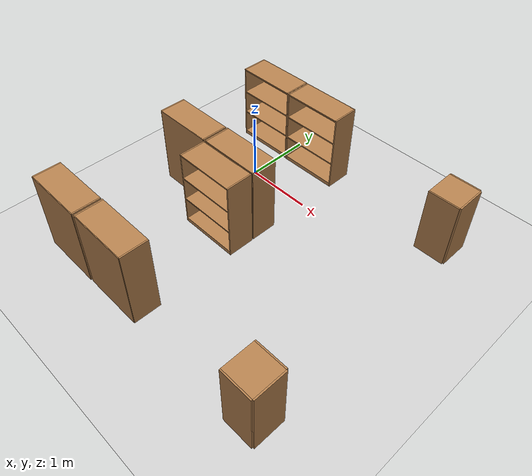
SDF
<sdf version="1.6">
 <world name="default">
  <model name="ground_plane">
   <static>1</static>
   <link name="link">
    <collision name="collision">
     <geometry><plane><normal>0 0 1</normal><size>100 100</size></plane></geometry>
     <surface><friction><ode><mu>100</mu><mu2>50</mu2></ode></friction></surface>
    </collision>
    <visual name="visual">
     <cast_shadows>0</cast_shadows>
     <geometry><plane><normal>0 0 1</normal><size>100 100</size></plane></geometry>
     <material>
      <script><uri>file://media/materials/scripts/gazebo.material</uri><name>Gazebo/Grey</name></script>
     </material>
    </visual>
   </link>
  </model>
  <model name="bookshelf">
   <static>1</static>
   <link name="link">
    <inertial><mass>1</mass></inertial>
    <collision name="back">
     <pose>0 0.005 0.6 0 -0 0</pose>
     <geometry><box><size>0.9 0.01 1.2</size></box></geometry>
    </collision>
    <visual name="visual1">
     <pose>0 0.005 0.6 0 -0 0</pose>
     <geometry><box><size>0.9 0.01 1.2</size></box></geometry>
     <material>
      <script><uri>file://media/materials/scripts/gazebo.material</uri><name>Gazebo/Wood</name></script>
     </material>
    </visual>
    <collision name="left_side">
     <pose>0.45 -0.195 0.6 0 -0 0</pose>
     <geometry><box><size>0.02 0.4 1.2</size></box></geometry>
    </collision>
    <visual name="visual2">
     <pose>0.45 -0.195 0.6 0 -0 0</pose>
     <geometry><box><size>0.02 0.4 1.2</size></box></geometry>
     <material>
      <script><uri>file://media/materials/scripts/gazebo.material</uri><name>Gazebo/Wood</name></script>
     </material>
    </visual>
    <collision name="right_side">
     <pose>-0.45 -0.195 0.6 0 -0 0</pose>
     <geometry><box><size>0.02 0.4 1.2</size></box></geometry>
    </collision>
    <visual name="visual3">
     <pose>-0.45 -0.195 0.6 0 -0 0</pose>
     <geometry><box><size>0.02 0.4 1.2</size></box></geometry>
     <material>
      <script><uri>file://media/materials/scripts/gazebo.material</uri><name>Gazebo/Wood</name></script>
     </material>
    </visual>
    <collision name="bottom">
     <pose>0 -0.195 0.03 0 -0 0</pose>
     <geometry><box><size>0.88 0.4 0.06</size></box></geometry>
    </collision>
    <visual name="visual4">
     <pose>0 -0.195 0.03 0 -0 0</pose>
     <geometry><box><size>0.88 0.4 0.06</size></box></geometry>
     <material>
      <script><uri>file://media/materials/scripts/gazebo.material</uri><name>Gazebo/Wood</name></script>
     </material>
    </visual>
    <collision name="top">
     <pose>0 -0.195 1.19 0 -0 0</pose>
     <geometry><box><size>0.88 0.4 0.02</size></box></geometry>
    </collision>
    <visual name="visual5">
     <pose>0 -0.195 1.19 0 -0 0</pose>
     <geometry><box><size>0.88 0.4 0.02</size></box></geometry>
     <material>
      <script><uri>file://media/materials/scripts/gazebo.material</uri><name>Gazebo/Wood</name></script>
     </material>
    </visual>
    <collision name="low_shelf">
     <pose>0 -0.195 0.43 0 -0 0</pose>
     <geometry><box><size>0.88 0.4 0.02</size></box></geometry>
    </collision>
    <visual name="visual6">
     <pose>0 -0.195 0.43 0 -0 0</pose>
     <geometry><box><size>0.88 0.4 0.02</size></box></geometry>
     <material>
      <script><uri>file://media/materials/scripts/gazebo.material</uri><name>Gazebo/Wood</name></script>
     </material>
    </visual>
    <collision name="high_shelf">
     <pose>0 -0.195 0.8 0 -0 0</pose>
     <geometry><box><size>0.88 0.4 0.02</size></box></geometry>
    </collision>
    <visual name="visual7">
     <pose>0 -0.195 0.8 0 -0 0</pose>
     <geometry><box><size>0.88 0.4 0.02</size></box></geometry>
     <material>
      <script><uri>file://media/materials/scripts/gazebo.material</uri><name>Gazebo/Wood</name></script>
     </material>
    </visual>
   </link>
   <pose>0.543919 0.980001 0 0 -0 0</pose>
  </model>
  <model name="bookshelf_clone">
   <static>1</static>
   <link name="link">
    <inertial><mass>1</mass></inertial>
    <collision name="back">
     <pose>0 0.005 0.6 0 -0 0</pose>
     <geometry><box><size>0.9 0.01 1.2</size></box></geometry>
    </collision>
    <visual name="visual1">
     <pose>0 0.005 0.6 0 -0 0</pose>
     <geometry><box><size>0.9 0.01 1.2</size></box></geometry>
     <material>
      <script><uri>file://media/materials/scripts/gazebo.material</uri><name>Gazebo/Wood</name></script>
     </material>
    </visual>
    <collision name="left_side">
     <pose>0.45 -0.195 0.6 0 -0 0</pose>
     <geometry><box><size>0.02 0.4 1.2</size></box></geometry>
    </collision>
    <visual name="visual2">
     <pose>0.45 -0.195 0.6 0 -0 0</pose>
     <geometry><box><size>0.02 0.4 1.2</size></box></geometry>
     <material>
      <script><uri>file://media/materials/scripts/gazebo.material</uri><name>Gazebo/Wood</name></script>
     </material>
    </visual>
    <collision name="right_side">
     <pose>-0.45 -0.195 0.6 0 -0 0</pose>
     <geometry><box><size>0.02 0.4 1.2</size></box></geometry>
    </collision>
    <visual name="visual3">
     <pose>-0.45 -0.195 0.6 0 -0 0</pose>
     <geometry><box><size>0.02 0.4 1.2</size></box></geometry>
     <material>
      <script><uri>file://media/materials/scripts/gazebo.material</uri><name>Gazebo/Wood</name></script>
     </material>
    </visual>
    <collision name="bottom">
     <pose>0 -0.195 0.03 0 -0 0</pose>
     <geometry><box><size>0.88 0.4 0.06</size></box></geometry>
    </collision>
    <visual name="visual4">
     <pose>0 -0.195 0.03 0 -0 0</pose>
     <geometry><box><size>0.88 0.4 0.06</size></box></geometry>
     <material>
      <script><uri>file://media/materials/scripts/gazebo.material</uri><name>Gazebo/Wood</name></script>
     </material>
    </visual>
    <collision name="top">
     <pose>0 -0.195 1.19 0 -0 0</pose>
     <geometry><box><size>0.88 0.4 0.02</size></box></geometry>
    </collision>
    <visual name="visual5">
     <pose>0 -0.195 1.19 0 -0 0</pose>
     <geometry><box><size>0.88 0.4 0.02</size></box></geometry>
     <material>
      <script><uri>file://media/materials/scripts/gazebo.material</uri><name>Gazebo/Wood</name></script>
     </material>
    </visual>
    <collision name="low_shelf">
     <pose>0 -0.195 0.43 0 -0 0</pose>
     <geometry><box><size>0.88 0.4 0.02</size></box></geometry>
    </collision>
    <visual name="visual6">
     <pose>0 -0.195 0.43 0 -0 0</pose>
     <geometry><box><size>0.88 0.4 0.02</size></box></geometry>
     <material>
      <script><uri>file://media/materials/scripts/gazebo.material</uri><name>Gazebo/Wood</name></script>
     </material>
    </visual>
    <collision name="high_shelf">
     <pose>0 -0.195 0.8 0 -0 0</pose>
     <geometry><box><size>0.88 0.4 0.02</size></box></geometry>
    </collision>
    <visual name="visual7">
     <pose>0 -0.195 0.8 0 -0 0</pose>
     <geometry><box><size>0.88 0.4 0.02</size></box></geometry>
     <material>
      <script><uri>file://media/materials/scripts/gazebo.material</uri><name>Gazebo/Wood</name></script>
     </material>
    </visual>
   </link>
   <pose>-0.382623 0.98568 0 0 -0 0</pose>
  </model>
  <model name="bookshelf_clone_2">
   <static>1</static>
   <link name="link">
    <inertial><mass>1</mass></inertial>
    <collision name="back">
     <pose>0 0.005 0.6 0 -0 0</pose>
     <geometry><box><size>0.9 0.01 1.2</size></box></geometry>
    </collision>
    <visual name="visual1">
     <pose>0 0.005 0.6 0 -0 0</pose>
     <geometry><box><size>0.9 0.01 1.2</size></box></geometry>
     <material>
      <script><uri>file://media/materials/scripts/gazebo.material</uri><name>Gazebo/Wood</name></script>
     </material>
    </visual>
    <collision name="left_side">
     <pose>0.45 -0.195 0.6 0 -0 0</pose>
     <geometry><box><size>0.02 0.4 1.2</size></box></geometry>
    </collision>
    <visual name="visual2">
     <pose>0.45 -0.195 0.6 0 -0 0</pose>
     <geometry><box><size>0.02 0.4 1.2</size></box></geometry>
     <material>
      <script><uri>file://media/materials/scripts/gazebo.material</uri><name>Gazebo/Wood</name></script>
     </material>
    </visual>
    <collision name="right_side">
     <pose>-0.45 -0.195 0.6 0 -0 0</pose>
     <geometry><box><size>0.02 0.4 1.2</size></box></geometry>
    </collision>
    <visual name="visual3">
     <pose>-0.45 -0.195 0.6 0 -0 0</pose>
     <geometry><box><size>0.02 0.4 1.2</size></box></geometry>
     <material>
      <script><uri>file://media/materials/scripts/gazebo.material</uri><name>Gazebo/Wood</name></script>
     </material>
    </visual>
    <collision name="bottom">
     <pose>0 -0.195 0.03 0 -0 0</pose>
     <geometry><box><size>0.88 0.4 0.06</size></box></geometry>
    </collision>
    <visual name="visual4">
     <pose>0 -0.195 0.03 0 -0 0</pose>
     <geometry><box><size>0.88 0.4 0.06</size></box></geometry>
     <material>
      <script><uri>file://media/materials/scripts/gazebo.material</uri><name>Gazebo/Wood</name></script>
     </material>
    </visual>
    <collision name="top">
     <pose>0 -0.195 1.19 0 -0 0</pose>
     <geometry><box><size>0.88 0.4 0.02</size></box></geometry>
    </collision>
    <visual name="visual5">
     <pose>0 -0.195 1.19 0 -0 0</pose>
     <geometry><box><size>0.88 0.4 0.02</size></box></geometry>
     <material>
      <script><uri>file://media/materials/scripts/gazebo.material</uri><name>Gazebo/Wood</name></script>
     </material>
    </visual>
    <collision name="low_shelf">
     <pose>0 -0.195 0.43 0 -0 0</pose>
     <geometry><box><size>0.88 0.4 0.02</size></box></geometry>
    </collision>
    <visual name="visual6">
     <pose>0 -0.195 0.43 0 -0 0</pose>
     <geometry><box><size>0.88 0.4 0.02</size></box></geometry>
     <material>
      <script><uri>file://media/materials/scripts/gazebo.material</uri><name>Gazebo/Wood</name></script>
     </material>
    </visual>
    <collision name="high_shelf">
     <pose>0 -0.195 0.8 0 -0 0</pose>
     <geometry><box><size>0.88 0.4 0.02</size></box></geometry>
    </collision>
    <visual name="visual7">
     <pose>0 -0.195 0.8 0 -0 0</pose>
     <geometry><box><size>0.88 0.4 0.02</size></box></geometry>
     <material>
      <script><uri>file://media/materials/scripts/gazebo.material</uri><name>Gazebo/Wood</name></script>
     </material>
    </visual>
   </link>
   <pose>0.533662 -0.977973 0 0 -0 3.1413</pose>
  </model>
  <model name="bookshelf_clone_2_clone">
   <static>1</static>
   <link name="link">
    <inertial><mass>1</mass></inertial>
    <collision name="back">
     <pose>0 0.005 0.6 0 -0 0</pose>
     <geometry><box><size>0.9 0.01 1.2</size></box></geometry>
    </collision>
    <visual name="visual1">
     <pose>0 0.005 0.6 0 -0 0</pose>
     <geometry><box><size>0.9 0.01 1.2</size></box></geometry>
     <material>
      <script><uri>file://media/materials/scripts/gazebo.material</uri><name>Gazebo/Wood</name></script>
     </material>
    </visual>
    <collision name="left_side">
     <pose>0.45 -0.195 0.6 0 -0 0</pose>
     <geometry><box><size>0.02 0.4 1.2</size></box></geometry>
    </collision>
    <visual name="visual2">
     <pose>0.45 -0.195 0.6 0 -0 0</pose>
     <geometry><box><size>0.02 0.4 1.2</size></box></geometry>
     <material>
      <script><uri>file://media/materials/scripts/gazebo.material</uri><name>Gazebo/Wood</name></script>
     </material>
    </visual>
    <collision name="right_side">
     <pose>-0.45 -0.195 0.6 0 -0 0</pose>
     <geometry><box><size>0.02 0.4 1.2</size></box></geometry>
    </collision>
    <visual name="visual3">
     <pose>-0.45 -0.195 0.6 0 -0 0</pose>
     <geometry><box><size>0.02 0.4 1.2</size></box></geometry>
     <material>
      <script><uri>file://media/materials/scripts/gazebo.material</uri><name>Gazebo/Wood</name></script>
     </material>
    </visual>
    <collision name="bottom">
     <pose>0 -0.195 0.03 0 -0 0</pose>
     <geometry><box><size>0.88 0.4 0.06</size></box></geometry>
    </collision>
    <visual name="visual4">
     <pose>0 -0.195 0.03 0 -0 0</pose>
     <geometry><box><size>0.88 0.4 0.06</size></box></geometry>
     <material>
      <script><uri>file://media/materials/scripts/gazebo.material</uri><name>Gazebo/Wood</name></script>
     </material>
    </visual>
    <collision name="top">
     <pose>0 -0.195 1.19 0 -0 0</pose>
     <geometry><box><size>0.88 0.4 0.02</size></box></geometry>
    </collision>
    <visual name="visual5">
     <pose>0 -0.195 1.19 0 -0 0</pose>
     <geometry><box><size>0.88 0.4 0.02</size></box></geometry>
     <material>
      <script><uri>file://media/materials/scripts/gazebo.material</uri><name>Gazebo/Wood</name></script>
     </material>
    </visual>
    <collision name="low_shelf">
     <pose>0 -0.195 0.43 0 -0 0</pose>
     <geometry><box><size>0.88 0.4 0.02</size></box></geometry>
    </collision>
    <visual name="visual6">
     <pose>0 -0.195 0.43 0 -0 0</pose>
     <geometry><box><size>0.88 0.4 0.02</size></box></geometry>
     <material>
      <script><uri>file://media/materials/scripts/gazebo.material</uri><name>Gazebo/Wood</name></script>
     </material>
    </visual>
    <collision name="high_shelf">
     <pose>0 -0.195 0.8 0 -0 0</pose>
     <geometry><box><size>0.88 0.4 0.02</size></box></geometry>
    </collision>
    <visual name="visual7">
     <pose>0 -0.195 0.8 0 -0 0</pose>
     <geometry><box><size>0.88 0.4 0.02</size></box></geometry>
     <material>
      <script><uri>file://media/materials/scripts/gazebo.material</uri><name>Gazebo/Wood</name></script>
     </material>
    </visual>
   </link>
   <pose>-0.40617 -0.984493 0 0 -0 3.1413</pose>
  </model>
  <model name="bookshelf_clone_1_clone">
   <static>1</static>
   <link name="link">
    <inertial><mass>1</mass></inertial>
    <collision name="back">
     <pose>0 0.005 0.6 0 -0 0</pose>
     <geometry><box><size>0.9 0.01 1.2</size></box></geometry>
    </collision>
    <visual name="visual1">
     <pose>0 0.005 0.6 0 -0 0</pose>
     <geometry><box><size>0.9 0.01 1.2</size></box></geometry>
     <material>
      <script><uri>file://media/materials/scripts/gazebo.material</uri><name>Gazebo/Wood</name></script>
     </material>
    </visual>
    <collision name="left_side">
     <pose>0.45 -0.195 0.6 0 -0 0</pose>
     <geometry><box><size>0.02 0.4 1.2</size></box></geometry>
    </collision>
    <visual name="visual2">
     <pose>0.45 -0.195 0.6 0 -0 0</pose>
     <geometry><box><size>0.02 0.4 1.2</size></box></geometry>
     <material>
      <script><uri>file://media/materials/scripts/gazebo.material</uri><name>Gazebo/Wood</name></script>
     </material>
    </visual>
    <collision name="right_side">
     <pose>-0.45 -0.195 0.6 0 -0 0</pose>
     <geometry><box><size>0.02 0.4 1.2</size></box></geometry>
    </collision>
    <visual name="visual3">
     <pose>-0.45 -0.195 0.6 0 -0 0</pose>
     <geometry><box><size>0.02 0.4 1.2</size></box></geometry>
     <material>
      <script><uri>file://media/materials/scripts/gazebo.material</uri><name>Gazebo/Wood</name></script>
     </material>
    </visual>
    <collision name="bottom">
     <pose>0 -0.195 0.03 0 -0 0</pose>
     <geometry><box><size>0.88 0.4 0.06</size></box></geometry>
    </collision>
    <visual name="visual4">
     <pose>0 -0.195 0.03 0 -0 0</pose>
     <geometry><box><size>0.88 0.4 0.06</size></box></geometry>
     <material>
      <script><uri>file://media/materials/scripts/gazebo.material</uri><name>Gazebo/Wood</name></script>
     </material>
    </visual>
    <collision name="top">
     <pose>0 -0.195 1.19 0 -0 0</pose>
     <geometry><box><size>0.88 0.4 0.02</size></box></geometry>
    </collision>
    <visual name="visual5">
     <pose>0 -0.195 1.19 0 -0 0</pose>
     <geometry><box><size>0.88 0.4 0.02</size></box></geometry>
     <material>
      <script><uri>file://media/materials/scripts/gazebo.material</uri><name>Gazebo/Wood</name></script>
     </material>
    </visual>
    <collision name="low_shelf">
     <pose>0 -0.195 0.43 0 -0 0</pose>
     <geometry><box><size>0.88 0.4 0.02</size></box></geometry>
    </collision>
    <visual name="visual6">
     <pose>0 -0.195 0.43 0 -0 0</pose>
     <geometry><box><size>0.88 0.4 0.02</size></box></geometry>
     <material>
      <script><uri>file://media/materials/scripts/gazebo.material</uri><name>Gazebo/Wood</name></script>
     </material>
    </visual>
    <collision name="high_shelf">
     <pose>0 -0.195 0.8 0 -0 0</pose>
     <geometry><box><size>0.88 0.4 0.02</size></box></geometry>
    </collision>
    <visual name="visual7">
     <pose>0 -0.195 0.8 0 -0 0</pose>
     <geometry><box><size>0.88 0.4 0.02</size></box></geometry>
     <material>
      <script><uri>file://media/materials/scripts/gazebo.material</uri><name>Gazebo/Wood</name></script>
     </material>
    </visual>
   </link>
   <pose>0.533773 -1.0106 0 0 -0 0</pose>
  </model>
  <model name="bookshelf_clone_2_clone_2">
   <static>1</static>
   <link name="link">
    <inertial><mass>1</mass></inertial>
    <collision name="back">
     <pose>0 0.005 0.6 0 -0 0</pose>
     <geometry><box><size>0.9 0.01 1.2</size></box></geometry>
    </collision>
    <visual name="visual1">
     <pose>0 0.005 0.6 0 -0 0</pose>
     <geometry><box><size>0.9 0.01 1.2</size></box></geometry>
     <material>
      <script><uri>file://media/materials/scripts/gazebo.material</uri><name>Gazebo/Wood</name></script>
     </material>
    </visual>
    <collision name="left_side">
     <pose>0.45 -0.195 0.6 0 -0 0</pose>
     <geometry><box><size>0.02 0.4 1.2</size></box></geometry>
    </collision>
    <visual name="visual2">
     <pose>0.45 -0.195 0.6 0 -0 0</pose>
     <geometry><box><size>0.02 0.4 1.2</size></box></geometry>
     <material>
      <script><uri>file://media/materials/scripts/gazebo.material</uri><name>Gazebo/Wood</name></script>
     </material>
    </visual>
    <collision name="right_side">
     <pose>-0.45 -0.195 0.6 0 -0 0</pose>
     <geometry><box><size>0.02 0.4 1.2</size></box></geometry>
    </collision>
    <visual name="visual3">
     <pose>-0.45 -0.195 0.6 0 -0 0</pose>
     <geometry><box><size>0.02 0.4 1.2</size></box></geometry>
     <material>
      <script><uri>file://media/materials/scripts/gazebo.material</uri><name>Gazebo/Wood</name></script>
     </material>
    </visual>
    <collision name="bottom">
     <pose>0 -0.195 0.03 0 -0 0</pose>
     <geometry><box><size>0.88 0.4 0.06</size></box></geometry>
    </collision>
    <visual name="visual4">
     <pose>0 -0.195 0.03 0 -0 0</pose>
     <geometry><box><size>0.88 0.4 0.06</size></box></geometry>
     <material>
      <script><uri>file://media/materials/scripts/gazebo.material</uri><name>Gazebo/Wood</name></script>
     </material>
    </visual>
    <collision name="top">
     <pose>0 -0.195 1.19 0 -0 0</pose>
     <geometry><box><size>0.88 0.4 0.02</size></box></geometry>
    </collision>
    <visual name="visual5">
     <pose>0 -0.195 1.19 0 -0 0</pose>
     <geometry><box><size>0.88 0.4 0.02</size></box></geometry>
     <material>
      <script><uri>file://media/materials/scripts/gazebo.material</uri><name>Gazebo/Wood</name></script>
     </material>
    </visual>
    <collision name="low_shelf">
     <pose>0 -0.195 0.43 0 -0 0</pose>
     <geometry><box><size>0.88 0.4 0.02</size></box></geometry>
    </collision>
    <visual name="visual6">
     <pose>0 -0.195 0.43 0 -0 0</pose>
     <geometry><box><size>0.88 0.4 0.02</size></box></geometry>
     <material>
      <script><uri>file://media/materials/scripts/gazebo.material</uri><name>Gazebo/Wood</name></script>
     </material>
    </visual>
    <collision name="high_shelf">
     <pose>0 -0.195 0.8 0 -0 0</pose>
     <geometry><box><size>0.88 0.4 0.02</size></box></geometry>
    </collision>
    <visual name="visual7">
     <pose>0 -0.195 0.8 0 -0 0</pose>
     <geometry><box><size>0.88 0.4 0.02</size></box></geometry>
     <material>
      <script><uri>file://media/materials/scripts/gazebo.material</uri><name>Gazebo/Wood</name></script>
     </material>
    </visual>
   </link>
   <pose>0.5436 -2.98047 0 0 -0 3.1413</pose>
  </model>
  <model name="bookshelf_clone_2_clone_3">
   <static>1</static>
   <link name="link">
    <inertial><mass>1</mass></inertial>
    <collision name="back">
     <pose>0 0.005 0.6 0 -0 0</pose>
     <geometry><box><size>0.9 0.01 1.2</size></box></geometry>
    </collision>
    <visual name="visual1">
     <pose>0 0.005 0.6 0 -0 0</pose>
     <geometry><box><size>0.9 0.01 1.2</size></box></geometry>
     <material>
      <script><uri>file://media/materials/scripts/gazebo.material</uri><name>Gazebo/Wood</name></script>
     </material>
    </visual>
    <collision name="left_side">
     <pose>0.45 -0.195 0.6 0 -0 0</pose>
     <geometry><box><size>0.02 0.4 1.2</size></box></geometry>
    </collision>
    <visual name="visual2">
     <pose>0.45 -0.195 0.6 0 -0 0</pose>
     <geometry><box><size>0.02 0.4 1.2</size></box></geometry>
     <material>
      <script><uri>file://media/materials/scripts/gazebo.material</uri><name>Gazebo/Wood</name></script>
     </material>
    </visual>
    <collision name="right_side">
     <pose>-0.45 -0.195 0.6 0 -0 0</pose>
     <geometry><box><size>0.02 0.4 1.2</size></box></geometry>
    </collision>
    <visual name="visual3">
     <pose>-0.45 -0.195 0.6 0 -0 0</pose>
     <geometry><box><size>0.02 0.4 1.2</size></box></geometry>
     <material>
      <script><uri>file://media/materials/scripts/gazebo.material</uri><name>Gazebo/Wood</name></script>
     </material>
    </visual>
    <collision name="bottom">
     <pose>0 -0.195 0.03 0 -0 0</pose>
     <geometry><box><size>0.88 0.4 0.06</size></box></geometry>
    </collision>
    <visual name="visual4">
     <pose>0 -0.195 0.03 0 -0 0</pose>
     <geometry><box><size>0.88 0.4 0.06</size></box></geometry>
     <material>
      <script><uri>file://media/materials/scripts/gazebo.material</uri><name>Gazebo/Wood</name></script>
     </material>
    </visual>
    <collision name="top">
     <pose>0 -0.195 1.19 0 -0 0</pose>
     <geometry><box><size>0.88 0.4 0.02</size></box></geometry>
    </collision>
    <visual name="visual5">
     <pose>0 -0.195 1.19 0 -0 0</pose>
     <geometry><box><size>0.88 0.4 0.02</size></box></geometry>
     <material>
      <script><uri>file://media/materials/scripts/gazebo.material</uri><name>Gazebo/Wood</name></script>
     </material>
    </visual>
    <collision name="low_shelf">
     <pose>0 -0.195 0.43 0 -0 0</pose>
     <geometry><box><size>0.88 0.4 0.02</size></box></geometry>
    </collision>
    <visual name="visual6">
     <pose>0 -0.195 0.43 0 -0 0</pose>
     <geometry><box><size>0.88 0.4 0.02</size></box></geometry>
     <material>
      <script><uri>file://media/materials/scripts/gazebo.material</uri><name>Gazebo/Wood</name></script>
     </material>
    </visual>
    <collision name="high_shelf">
     <pose>0 -0.195 0.8 0 -0 0</pose>
     <geometry><box><size>0.88 0.4 0.02</size></box></geometry>
    </collision>
    <visual name="visual7">
     <pose>0 -0.195 0.8 0 -0 0</pose>
     <geometry><box><size>0.88 0.4 0.02</size></box></geometry>
     <material>
      <script><uri>file://media/materials/scripts/gazebo.material</uri><name>Gazebo/Wood</name></script>
     </material>
    </visual>
   </link>
   <pose>-0.400998 -2.98737 0 0 -0 3.1413</pose>
  </model>
  <model name="cabinet">
   <static>1</static>
   <link name="cabinet_bottom_plate">
    <inertial>
     <pose>0 0 -1 0 -0 0</pose>
     <inertia><ixx>2.05</ixx><ixy>0</ixy><ixz>0</ixz><iyy>2.05</iyy><iyz>0</iyz><izz>2.05</izz></inertia>
     <mass>25</mass>
    </inertial>
    <collision name="cabinet_bottom_plate_geom">
     <pose>0 0 0.01 0 -0 0</pose>
     <geometry><box><size>0.45 0.45 0.02</size></box></geometry>
    </collision>
    <visual name="cabinet_bottom_plate_geom_visual">
     <pose>0 0 0.01 0 -0 0</pose>
     <geometry><box><size>0.45 0.45 0.02</size></box></geometry>
     <material>
      <script><uri>file://media/materials/scripts/gazebo.material</uri><name>Gazebo/Wood</name></script>
     </material>
    </visual>
    <collision name="cabinet_bottom_plate_geom_cabinet_back_plate">
     <pose>0.235 0 0.51 0 -0 0</pose>
     <geometry><box><size>0.02 0.45 1.02</size></box></geometry>
    </collision>
    <visual name="cabinet_bottom_plate_geom_cabinet_back_plate_visual">
     <pose>0.235 0 0.51 0 -0 0</pose>
     <geometry><box><size>0.02 0.45 1.02</size></box></geometry>
     <material>
      <script><uri>file://media/materials/scripts/gazebo.material</uri><name>Gazebo/Wood</name></script>
     </material>
    </visual>
    <collision name="cabinet_bottom_plate_geom_cabinet_left_plate">
     <pose>0 0.235 0.51 0 -0 0</pose>
     <geometry><box><size>0.45 0.02 1.02</size></box></geometry>
    </collision>
    <visual name="cabinet_bottom_plate_geom_cabinet_left_plate_visual">
     <pose>0 0.235 0.51 0 -0 0</pose>
     <geometry><box><size>0.45 0.02 1.02</size></box></geometry>
     <material>
      <script><uri>file://media/materials/scripts/gazebo.material</uri><name>Gazebo/Wood</name></script>
     </material>
    </visual>
    <collision name="cabinet_bottom_plate_geom_cabinet_middle_plate">
     <pose>0 0 0.51 0 -0 0</pose>
     <geometry><box><size>0.45 0.45 0.02</size></box></geometry>
    </collision>
    <visual name="cabinet_bottom_plate_geom_cabinet_middle_plate_visual">
     <pose>0 0 0.51 0 -0 0</pose>
     <geometry><box><size>0.45 0.45 0.02</size></box></geometry>
     <material>
      <script><uri>file://media/materials/scripts/gazebo.material</uri><name>Gazebo/Wood</name></script>
     </material>
    </visual>
    <collision name="cabinet_bottom_plate_geom_cabinet_right_plate">
     <pose>0 -0.235 0.51 0 -0 0</pose>
     <geometry><box><size>0.45 0.02 1.02</size></box></geometry>
    </collision>
    <visual name="cabinet_bottom_plate_geom_cabinet_right_plate_visual">
     <pose>0 -0.235 0.51 0 -0 0</pose>
     <geometry><box><size>0.45 0.02 1.02</size></box></geometry>
     <material>
      <script><uri>file://media/materials/scripts/gazebo.material</uri><name>Gazebo/Wood</name></script>
     </material>
    </visual>
    <collision name="cabinet_bottom_plate_geom_cabinet_top_plate">
     <pose>0 0 1.01 0 -0 0</pose>
     <geometry><box><size>0.45 0.45 0.02</size></box></geometry>
    </collision>
    <visual name="cabinet_bottom_plate_geom_cabinet_top_plate_visual">
     <pose>0 0 1.01 0 -0 0</pose>
     <geometry><box><size>0.45 0.45 0.02</size></box></geometry>
     <material>
      <script><uri>file://media/materials/scripts/gazebo.material</uri><name>Gazebo/Wood</name></script>
     </material>
    </visual>
   </link>
   <pose>2.82689 0.758583 0 0 -0 0</pose>
  </model>
  <model name="cabinet_clone">
   <static>1</static>
   <link name="cabinet_bottom_plate">
    <inertial>
     <pose>0 0 -1 0 -0 0</pose>
     <inertia><ixx>2.05</ixx><ixy>0</ixy><ixz>0</ixz><iyy>2.05</iyy><iyz>0</iyz><izz>2.05</izz></inertia>
     <mass>25</mass>
    </inertial>
    <collision name="cabinet_bottom_plate_geom">
     <pose>0 0 0.01 0 -0 0</pose>
     <geometry><box><size>0.45 0.45 0.02</size></box></geometry>
    </collision>
    <visual name="cabinet_bottom_plate_geom_visual">
     <pose>0 0 0.01 0 -0 0</pose>
     <geometry><box><size>0.45 0.45 0.02</size></box></geometry>
     <material>
      <script><uri>file://media/materials/scripts/gazebo.material</uri><name>Gazebo/Wood</name></script>
     </material>
    </visual>
    <collision name="cabinet_bottom_plate_geom_cabinet_back_plate">
     <pose>0.235 0 0.51 0 -0 0</pose>
     <geometry><box><size>0.02 0.45 1.02</size></box></geometry>
    </collision>
    <visual name="cabinet_bottom_plate_geom_cabinet_back_plate_visual">
     <pose>0.235 0 0.51 0 -0 0</pose>
     <geometry><box><size>0.02 0.45 1.02</size></box></geometry>
     <material>
      <script><uri>file://media/materials/scripts/gazebo.material</uri><name>Gazebo/Wood</name></script>
     </material>
    </visual>
    <collision name="cabinet_bottom_plate_geom_cabinet_left_plate">
     <pose>0 0.235 0.51 0 -0 0</pose>
     <geometry><box><size>0.45 0.02 1.02</size></box></geometry>
    </collision>
    <visual name="cabinet_bottom_plate_geom_cabinet_left_plate_visual">
     <pose>0 0.235 0.51 0 -0 0</pose>
     <geometry><box><size>0.45 0.02 1.02</size></box></geometry>
     <material>
      <script><uri>file://media/materials/scripts/gazebo.material</uri><name>Gazebo/Wood</name></script>
     </material>
    </visual>
    <collision name="cabinet_bottom_plate_geom_cabinet_middle_plate">
     <pose>0 0 0.51 0 -0 0</pose>
     <geometry><box><size>0.45 0.45 0.02</size></box></geometry>
    </collision>
    <visual name="cabinet_bottom_plate_geom_cabinet_middle_plate_visual">
     <pose>0 0 0.51 0 -0 0</pose>
     <geometry><box><size>0.45 0.45 0.02</size></box></geometry>
     <material>
      <script><uri>file://media/materials/scripts/gazebo.material</uri><name>Gazebo/Wood</name></script>
     </material>
    </visual>
    <collision name="cabinet_bottom_plate_geom_cabinet_right_plate">
     <pose>0 -0.235 0.51 0 -0 0</pose>
     <geometry><box><size>0.45 0.02 1.02</size></box></geometry>
    </collision>
    <visual name="cabinet_bottom_plate_geom_cabinet_right_plate_visual">
     <pose>0 -0.235 0.51 0 -0 0</pose>
     <geometry><box><size>0.45 0.02 1.02</size></box></geometry>
     <material>
      <script><uri>file://media/materials/scripts/gazebo.material</uri><name>Gazebo/Wood</name></script>
     </material>
    </visual>
    <collision name="cabinet_bottom_plate_geom_cabinet_top_plate">
     <pose>0 0 1.01 0 -0 0</pose>
     <geometry><box><size>0.45 0.45 0.02</size></box></geometry>
    </collision>
    <visual name="cabinet_bottom_plate_geom_cabinet_top_plate_visual">
     <pose>0 0 1.01 0 -0 0</pose>
     <geometry><box><size>0.45 0.45 0.02</size></box></geometry>
     <material>
      <script><uri>file://media/materials/scripts/gazebo.material</uri><name>Gazebo/Wood</name></script>
     </material>
    </visual>
   </link>
   <pose>2.90415 -2.78801 0 0 -0 0</pose>
  </model>
 </world>
</sdf>
